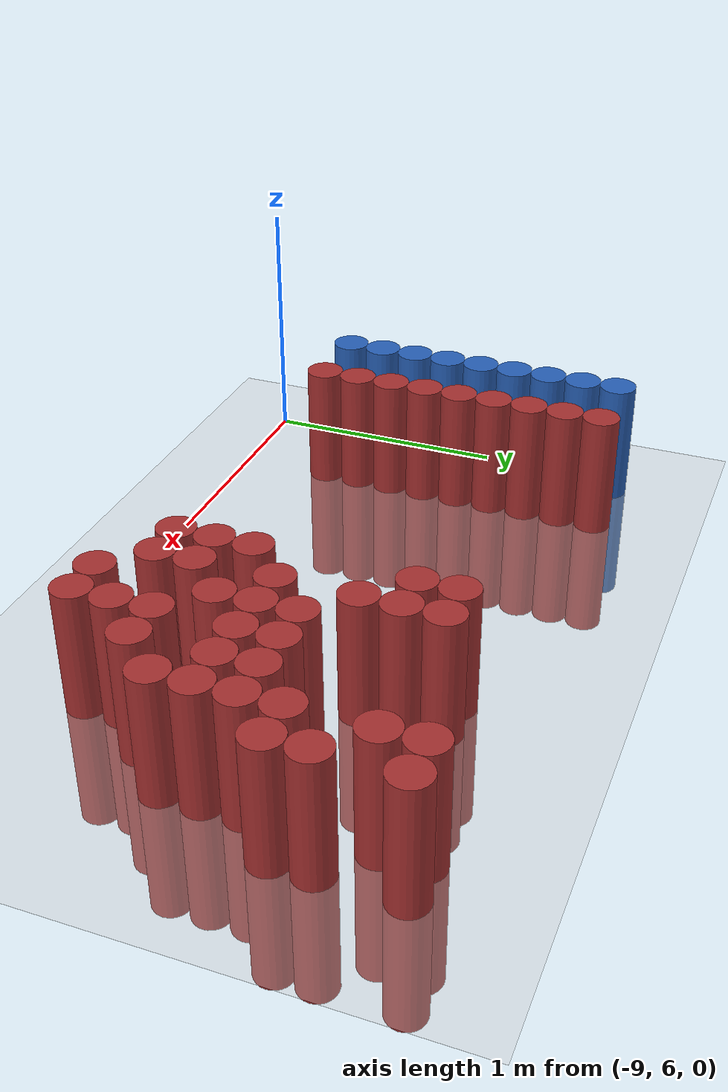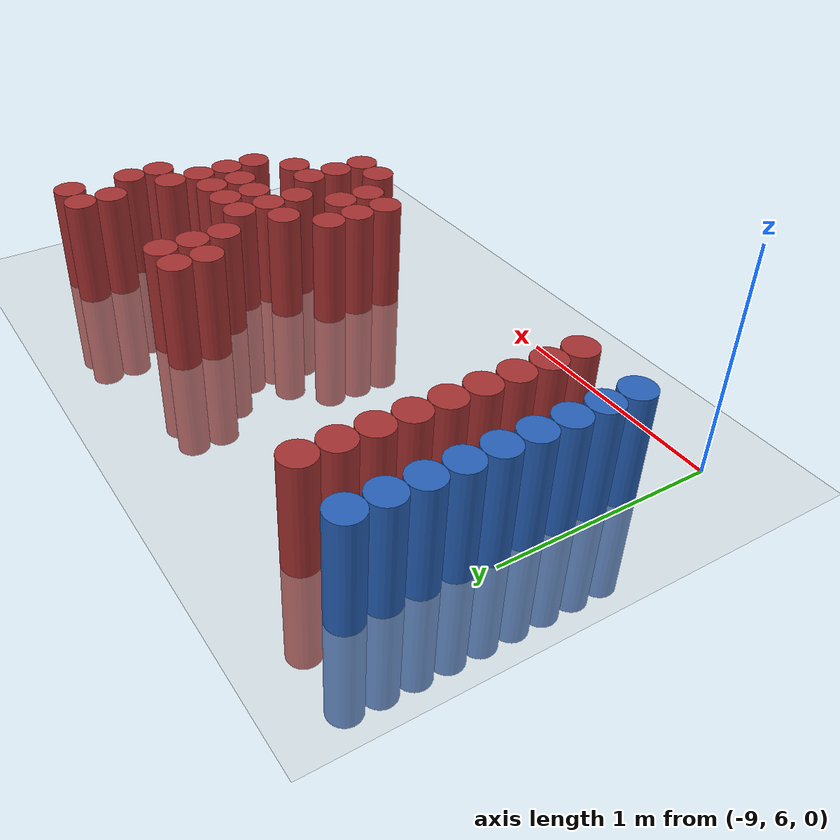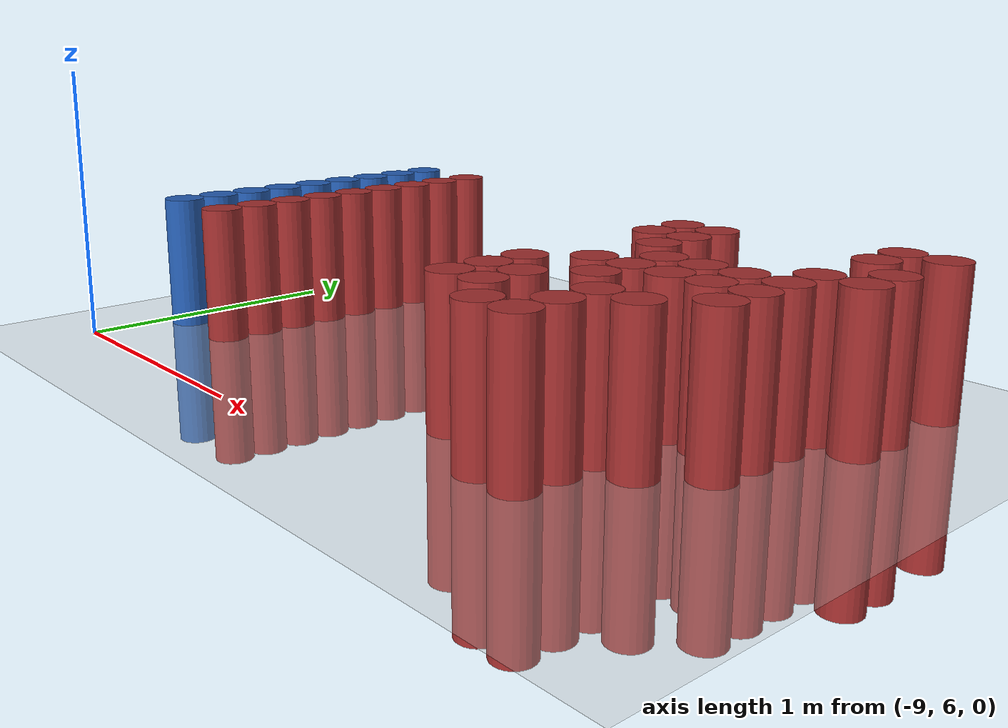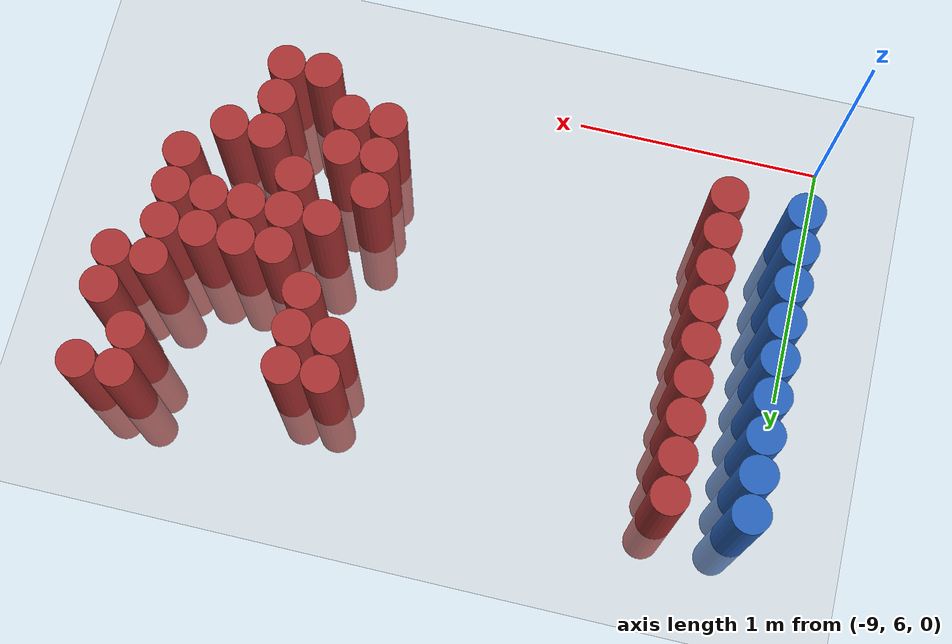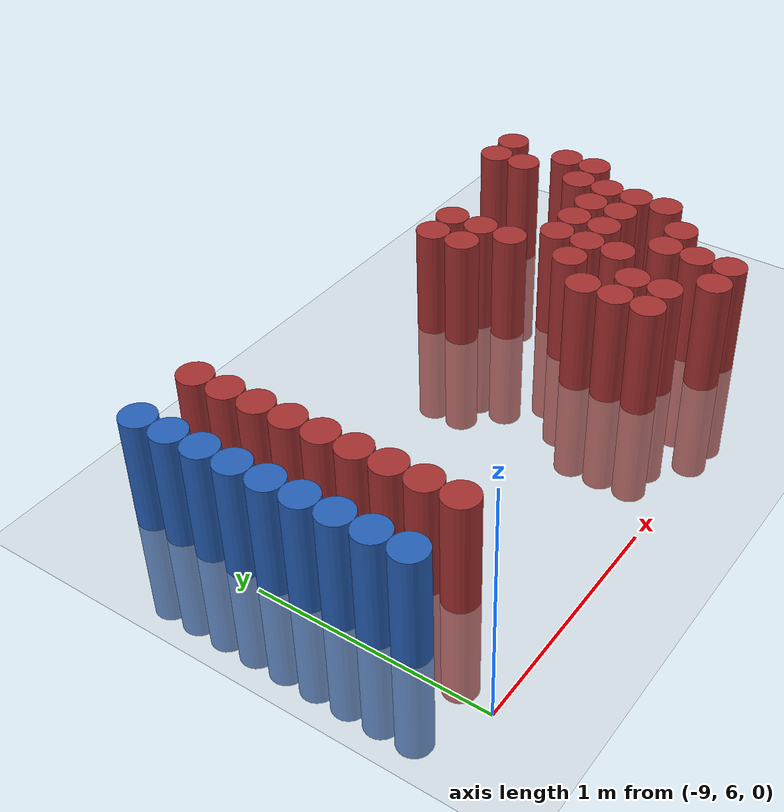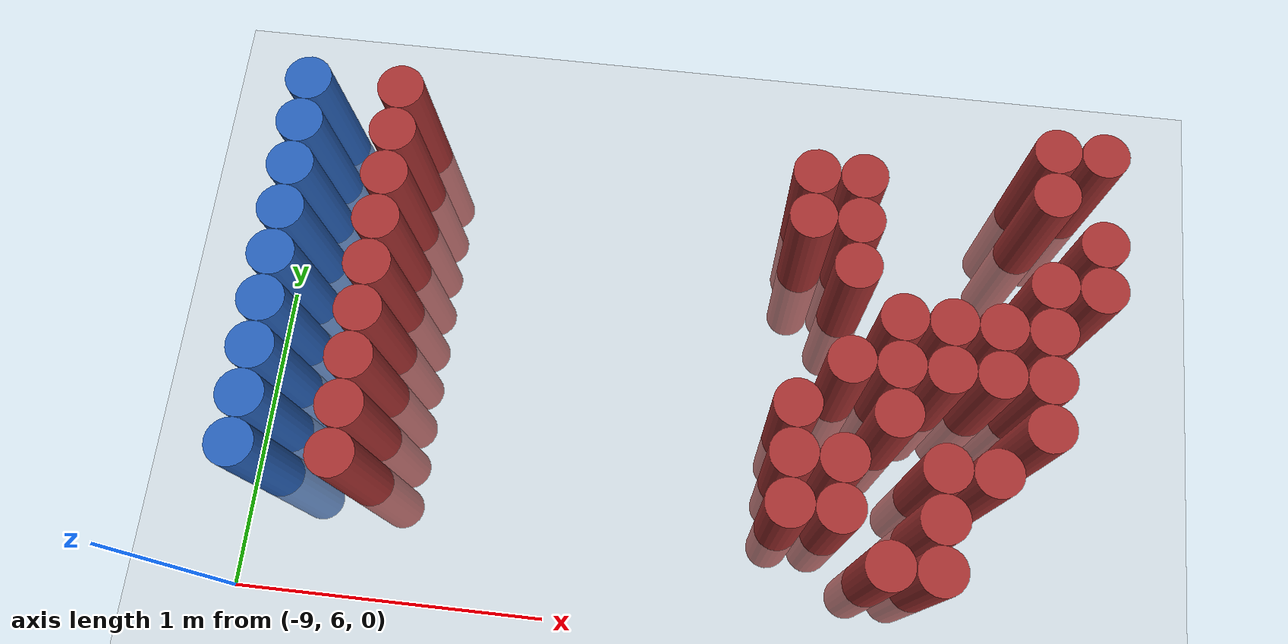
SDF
<sdf version="1.6">
 <world name="default">
  <model name="ground_plane">
   <static>1</static>
   <link name="link">
    <collision name="collision">
     <geometry><plane><normal>0 0 1</normal><size>100 100</size></plane></geometry>
     <surface><friction><ode><mu>100</mu><mu2>50</mu2></ode></friction></surface>
    </collision>
    <visual name="visual">
     <cast_shadows>0</cast_shadows>
     <geometry><plane><normal>0 0 1</normal><size>100 100</size></plane></geometry>
     <material>
      <script><uri>file://media/materials/scripts/gazebo.material</uri><name>Gazebo/Grey</name></script>
     </material>
    </visual>
   </link>
  </model>
  <model name="unit_cylinder_133">
   <static>1</static>
   <pose>-8.925000 6.375000 0.000000 0.000000 0.000000 0.000000</pose>
   <link name="link">
    <inertial>
     <mass>1</mass>
     <inertia><ixx>0.145833</ixx><ixy>0</ixy><ixz>0</ixz><iyy>0.145833</iyy><iyz>0</iyz><izz>0.125</izz></inertia>
    </inertial>
    <collision name="collision">
     <geometry><cylinder><radius>0.075000</radius><length>1</length></cylinder></geometry>
    </collision>
    <visual name="visual">
     <geometry><cylinder><radius>0.075000</radius><length>1</length></cylinder></geometry>
     <material>
      <ambient>0.152000 0.379000 0.720000 1</ambient>
      <diffuse>0.152000 0.379000 0.720000 1</diffuse>
     </material>
     <material>
      <script><name>Gazebo/Grey</name><uri>file://media/materials/scripts/gazebo.material</uri></script>
     </material>
    </visual>
   </link>
  </model>
  <model name="unit_cylinder_134">
   <static>1</static>
   <pose>-8.925000 6.525000 0.000000 0.000000 0.000000 0.000000</pose>
   <link name="link">
    <inertial>
     <mass>1</mass>
     <inertia><ixx>0.145833</ixx><ixy>0</ixy><ixz>0</ixz><iyy>0.145833</iyy><iyz>0</iyz><izz>0.125</izz></inertia>
    </inertial>
    <collision name="collision">
     <geometry><cylinder><radius>0.075000</radius><length>1</length></cylinder></geometry>
    </collision>
    <visual name="visual">
     <geometry><cylinder><radius>0.075000</radius><length>1</length></cylinder></geometry>
     <material>
      <ambient>0.152000 0.379000 0.720000 1</ambient>
      <diffuse>0.152000 0.379000 0.720000 1</diffuse>
     </material>
     <material>
      <script><name>Gazebo/Grey</name><uri>file://media/materials/scripts/gazebo.material</uri></script>
     </material>
    </visual>
   </link>
  </model>
  <model name="unit_cylinder_135">
   <static>1</static>
   <pose>-8.925000 6.675000 0.000000 0.000000 0.000000 0.000000</pose>
   <link name="link">
    <inertial>
     <mass>1</mass>
     <inertia><ixx>0.145833</ixx><ixy>0</ixy><ixz>0</ixz><iyy>0.145833</iyy><iyz>0</iyz><izz>0.125</izz></inertia>
    </inertial>
    <collision name="collision">
     <geometry><cylinder><radius>0.075000</radius><length>1</length></cylinder></geometry>
    </collision>
    <visual name="visual">
     <geometry><cylinder><radius>0.075000</radius><length>1</length></cylinder></geometry>
     <material>
      <ambient>0.152000 0.379000 0.720000 1</ambient>
      <diffuse>0.152000 0.379000 0.720000 1</diffuse>
     </material>
     <material>
      <script><name>Gazebo/Grey</name><uri>file://media/materials/scripts/gazebo.material</uri></script>
     </material>
    </visual>
   </link>
  </model>
  <model name="unit_cylinder_136">
   <static>1</static>
   <pose>-8.925000 6.825000 0.000000 0.000000 0.000000 0.000000</pose>
   <link name="link">
    <inertial>
     <mass>1</mass>
     <inertia><ixx>0.145833</ixx><ixy>0</ixy><ixz>0</ixz><iyy>0.145833</iyy><iyz>0</iyz><izz>0.125</izz></inertia>
    </inertial>
    <collision name="collision">
     <geometry><cylinder><radius>0.075000</radius><length>1</length></cylinder></geometry>
    </collision>
    <visual name="visual">
     <geometry><cylinder><radius>0.075000</radius><length>1</length></cylinder></geometry>
     <material>
      <ambient>0.152000 0.379000 0.720000 1</ambient>
      <diffuse>0.152000 0.379000 0.720000 1</diffuse>
     </material>
     <material>
      <script><name>Gazebo/Grey</name><uri>file://media/materials/scripts/gazebo.material</uri></script>
     </material>
    </visual>
   </link>
  </model>
  <model name="unit_cylinder_137">
   <static>1</static>
   <pose>-8.925000 6.975000 0.000000 0.000000 0.000000 0.000000</pose>
   <link name="link">
    <inertial>
     <mass>1</mass>
     <inertia><ixx>0.145833</ixx><ixy>0</ixy><ixz>0</ixz><iyy>0.145833</iyy><iyz>0</iyz><izz>0.125</izz></inertia>
    </inertial>
    <collision name="collision">
     <geometry><cylinder><radius>0.075000</radius><length>1</length></cylinder></geometry>
    </collision>
    <visual name="visual">
     <geometry><cylinder><radius>0.075000</radius><length>1</length></cylinder></geometry>
     <material>
      <ambient>0.152000 0.379000 0.720000 1</ambient>
      <diffuse>0.152000 0.379000 0.720000 1</diffuse>
     </material>
     <material>
      <script><name>Gazebo/Grey</name><uri>file://media/materials/scripts/gazebo.material</uri></script>
     </material>
    </visual>
   </link>
  </model>
  <model name="unit_cylinder_138">
   <static>1</static>
   <pose>-8.925000 7.125000 0.000000 0.000000 0.000000 0.000000</pose>
   <link name="link">
    <inertial>
     <mass>1</mass>
     <inertia><ixx>0.145833</ixx><ixy>0</ixy><ixz>0</ixz><iyy>0.145833</iyy><iyz>0</iyz><izz>0.125</izz></inertia>
    </inertial>
    <collision name="collision">
     <geometry><cylinder><radius>0.075000</radius><length>1</length></cylinder></geometry>
    </collision>
    <visual name="visual">
     <geometry><cylinder><radius>0.075000</radius><length>1</length></cylinder></geometry>
     <material>
      <ambient>0.152000 0.379000 0.720000 1</ambient>
      <diffuse>0.152000 0.379000 0.720000 1</diffuse>
     </material>
     <material>
      <script><name>Gazebo/Grey</name><uri>file://media/materials/scripts/gazebo.material</uri></script>
     </material>
    </visual>
   </link>
  </model>
  <model name="unit_cylinder_139">
   <static>1</static>
   <pose>-8.925000 7.275000 0.000000 0.000000 0.000000 0.000000</pose>
   <link name="link">
    <inertial>
     <mass>1</mass>
     <inertia><ixx>0.145833</ixx><ixy>0</ixy><ixz>0</ixz><iyy>0.145833</iyy><iyz>0</iyz><izz>0.125</izz></inertia>
    </inertial>
    <collision name="collision">
     <geometry><cylinder><radius>0.075000</radius><length>1</length></cylinder></geometry>
    </collision>
    <visual name="visual">
     <geometry><cylinder><radius>0.075000</radius><length>1</length></cylinder></geometry>
     <material>
      <ambient>0.152000 0.379000 0.720000 1</ambient>
      <diffuse>0.152000 0.379000 0.720000 1</diffuse>
     </material>
     <material>
      <script><name>Gazebo/Grey</name><uri>file://media/materials/scripts/gazebo.material</uri></script>
     </material>
    </visual>
   </link>
  </model>
  <model name="unit_cylinder_140">
   <static>1</static>
   <pose>-8.925000 7.425000 0.000000 0.000000 0.000000 0.000000</pose>
   <link name="link">
    <inertial>
     <mass>1</mass>
     <inertia><ixx>0.145833</ixx><ixy>0</ixy><ixz>0</ixz><iyy>0.145833</iyy><iyz>0</iyz><izz>0.125</izz></inertia>
    </inertial>
    <collision name="collision">
     <geometry><cylinder><radius>0.075000</radius><length>1</length></cylinder></geometry>
    </collision>
    <visual name="visual">
     <geometry><cylinder><radius>0.075000</radius><length>1</length></cylinder></geometry>
     <material>
      <ambient>0.152000 0.379000 0.720000 1</ambient>
      <diffuse>0.152000 0.379000 0.720000 1</diffuse>
     </material>
     <material>
      <script><name>Gazebo/Grey</name><uri>file://media/materials/scripts/gazebo.material</uri></script>
     </material>
    </visual>
   </link>
  </model>
  <model name="unit_cylinder_141">
   <static>1</static>
   <pose>-8.925000 7.575000 0.000000 0.000000 0.000000 0.000000</pose>
   <link name="link">
    <inertial>
     <mass>1</mass>
     <inertia><ixx>0.145833</ixx><ixy>0</ixy><ixz>0</ixz><iyy>0.145833</iyy><iyz>0</iyz><izz>0.125</izz></inertia>
    </inertial>
    <collision name="collision">
     <geometry><cylinder><radius>0.075000</radius><length>1</length></cylinder></geometry>
    </collision>
    <visual name="visual">
     <geometry><cylinder><radius>0.075000</radius><length>1</length></cylinder></geometry>
     <material>
      <ambient>0.152000 0.379000 0.720000 1</ambient>
      <diffuse>0.152000 0.379000 0.720000 1</diffuse>
     </material>
     <material>
      <script><name>Gazebo/Grey</name><uri>file://media/materials/scripts/gazebo.material</uri></script>
     </material>
    </visual>
   </link>
  </model>
  <model name="unit_cylinder_165">
   <static>1</static>
   <pose>-8.625000 6.375000 0.000000 0.000000 0.000000 0.000000</pose>
   <link name="link">
    <inertial>
     <mass>1</mass>
     <inertia><ixx>0.145833</ixx><ixy>0</ixy><ixz>0</ixz><iyy>0.145833</iyy><iyz>0</iyz><izz>0.125</izz></inertia>
    </inertial>
    <collision name="collision">
     <geometry><cylinder><radius>0.075000</radius><length>1</length></cylinder></geometry>
    </collision>
    <visual name="visual">
     <geometry><cylinder><radius>0.075000</radius><length>1</length></cylinder></geometry>
     <material>
      <ambient>0.648000 0.192000 0.192000 1</ambient>
      <diffuse>0.648000 0.192000 0.192000 1</diffuse>
     </material>
     <material>
      <script><name>Gazebo/Grey</name><uri>file://media/materials/scripts/gazebo.material</uri></script>
     </material>
    </visual>
   </link>
  </model>
  <model name="unit_cylinder_166">
   <static>1</static>
   <pose>-8.625000 6.525000 0.000000 0.000000 0.000000 0.000000</pose>
   <link name="link">
    <inertial>
     <mass>1</mass>
     <inertia><ixx>0.145833</ixx><ixy>0</ixy><ixz>0</ixz><iyy>0.145833</iyy><iyz>0</iyz><izz>0.125</izz></inertia>
    </inertial>
    <collision name="collision">
     <geometry><cylinder><radius>0.075000</radius><length>1</length></cylinder></geometry>
    </collision>
    <visual name="visual">
     <geometry><cylinder><radius>0.075000</radius><length>1</length></cylinder></geometry>
     <material>
      <ambient>0.648000 0.192000 0.192000 1</ambient>
      <diffuse>0.648000 0.192000 0.192000 1</diffuse>
     </material>
     <material>
      <script><name>Gazebo/Grey</name><uri>file://media/materials/scripts/gazebo.material</uri></script>
     </material>
    </visual>
   </link>
  </model>
  <model name="unit_cylinder_167">
   <static>1</static>
   <pose>-8.625000 6.675000 0.000000 0.000000 0.000000 0.000000</pose>
   <link name="link">
    <inertial>
     <mass>1</mass>
     <inertia><ixx>0.145833</ixx><ixy>0</ixy><ixz>0</ixz><iyy>0.145833</iyy><iyz>0</iyz><izz>0.125</izz></inertia>
    </inertial>
    <collision name="collision">
     <geometry><cylinder><radius>0.075000</radius><length>1</length></cylinder></geometry>
    </collision>
    <visual name="visual">
     <geometry><cylinder><radius>0.075000</radius><length>1</length></cylinder></geometry>
     <material>
      <ambient>0.648000 0.192000 0.192000 1</ambient>
      <diffuse>0.648000 0.192000 0.192000 1</diffuse>
     </material>
     <material>
      <script><name>Gazebo/Grey</name><uri>file://media/materials/scripts/gazebo.material</uri></script>
     </material>
    </visual>
   </link>
  </model>
  <model name="unit_cylinder_168">
   <static>1</static>
   <pose>-8.625000 6.825000 0.000000 0.000000 0.000000 0.000000</pose>
   <link name="link">
    <inertial>
     <mass>1</mass>
     <inertia><ixx>0.145833</ixx><ixy>0</ixy><ixz>0</ixz><iyy>0.145833</iyy><iyz>0</iyz><izz>0.125</izz></inertia>
    </inertial>
    <collision name="collision">
     <geometry><cylinder><radius>0.075000</radius><length>1</length></cylinder></geometry>
    </collision>
    <visual name="visual">
     <geometry><cylinder><radius>0.075000</radius><length>1</length></cylinder></geometry>
     <material>
      <ambient>0.648000 0.192000 0.192000 1</ambient>
      <diffuse>0.648000 0.192000 0.192000 1</diffuse>
     </material>
     <material>
      <script><name>Gazebo/Grey</name><uri>file://media/materials/scripts/gazebo.material</uri></script>
     </material>
    </visual>
   </link>
  </model>
  <model name="unit_cylinder_169">
   <static>1</static>
   <pose>-8.625000 6.975000 0.000000 0.000000 0.000000 0.000000</pose>
   <link name="link">
    <inertial>
     <mass>1</mass>
     <inertia><ixx>0.145833</ixx><ixy>0</ixy><ixz>0</ixz><iyy>0.145833</iyy><iyz>0</iyz><izz>0.125</izz></inertia>
    </inertial>
    <collision name="collision">
     <geometry><cylinder><radius>0.075000</radius><length>1</length></cylinder></geometry>
    </collision>
    <visual name="visual">
     <geometry><cylinder><radius>0.075000</radius><length>1</length></cylinder></geometry>
     <material>
      <ambient>0.648000 0.192000 0.192000 1</ambient>
      <diffuse>0.648000 0.192000 0.192000 1</diffuse>
     </material>
     <material>
      <script><name>Gazebo/Grey</name><uri>file://media/materials/scripts/gazebo.material</uri></script>
     </material>
    </visual>
   </link>
  </model>
  <model name="unit_cylinder_170">
   <static>1</static>
   <pose>-8.625000 7.125000 0.000000 0.000000 0.000000 0.000000</pose>
   <link name="link">
    <inertial>
     <mass>1</mass>
     <inertia><ixx>0.145833</ixx><ixy>0</ixy><ixz>0</ixz><iyy>0.145833</iyy><iyz>0</iyz><izz>0.125</izz></inertia>
    </inertial>
    <collision name="collision">
     <geometry><cylinder><radius>0.075000</radius><length>1</length></cylinder></geometry>
    </collision>
    <visual name="visual">
     <geometry><cylinder><radius>0.075000</radius><length>1</length></cylinder></geometry>
     <material>
      <ambient>0.648000 0.192000 0.192000 1</ambient>
      <diffuse>0.648000 0.192000 0.192000 1</diffuse>
     </material>
     <material>
      <script><name>Gazebo/Grey</name><uri>file://media/materials/scripts/gazebo.material</uri></script>
     </material>
    </visual>
   </link>
  </model>
  <model name="unit_cylinder_171">
   <static>1</static>
   <pose>-8.625000 7.275000 0.000000 0.000000 0.000000 0.000000</pose>
   <link name="link">
    <inertial>
     <mass>1</mass>
     <inertia><ixx>0.145833</ixx><ixy>0</ixy><ixz>0</ixz><iyy>0.145833</iyy><iyz>0</iyz><izz>0.125</izz></inertia>
    </inertial>
    <collision name="collision">
     <geometry><cylinder><radius>0.075000</radius><length>1</length></cylinder></geometry>
    </collision>
    <visual name="visual">
     <geometry><cylinder><radius>0.075000</radius><length>1</length></cylinder></geometry>
     <material>
      <ambient>0.648000 0.192000 0.192000 1</ambient>
      <diffuse>0.648000 0.192000 0.192000 1</diffuse>
     </material>
     <material>
      <script><name>Gazebo/Grey</name><uri>file://media/materials/scripts/gazebo.material</uri></script>
     </material>
    </visual>
   </link>
  </model>
  <model name="unit_cylinder_172">
   <static>1</static>
   <pose>-8.625000 7.425000 0.000000 0.000000 0.000000 0.000000</pose>
   <link name="link">
    <inertial>
     <mass>1</mass>
     <inertia><ixx>0.145833</ixx><ixy>0</ixy><ixz>0</ixz><iyy>0.145833</iyy><iyz>0</iyz><izz>0.125</izz></inertia>
    </inertial>
    <collision name="collision">
     <geometry><cylinder><radius>0.075000</radius><length>1</length></cylinder></geometry>
    </collision>
    <visual name="visual">
     <geometry><cylinder><radius>0.075000</radius><length>1</length></cylinder></geometry>
     <material>
      <ambient>0.648000 0.192000 0.192000 1</ambient>
      <diffuse>0.648000 0.192000 0.192000 1</diffuse>
     </material>
     <material>
      <script><name>Gazebo/Grey</name><uri>file://media/materials/scripts/gazebo.material</uri></script>
     </material>
    </visual>
   </link>
  </model>
  <model name="unit_cylinder_173">
   <static>1</static>
   <pose>-8.625000 7.575000 0.000000 0.000000 0.000000 0.000000</pose>
   <link name="link">
    <inertial>
     <mass>1</mass>
     <inertia><ixx>0.145833</ixx><ixy>0</ixy><ixz>0</ixz><iyy>0.145833</iyy><iyz>0</iyz><izz>0.125</izz></inertia>
    </inertial>
    <collision name="collision">
     <geometry><cylinder><radius>0.075000</radius><length>1</length></cylinder></geometry>
    </collision>
    <visual name="visual">
     <geometry><cylinder><radius>0.075000</radius><length>1</length></cylinder></geometry>
     <material>
      <ambient>0.648000 0.192000 0.192000 1</ambient>
      <diffuse>0.648000 0.192000 0.192000 1</diffuse>
     </material>
     <material>
      <script><name>Gazebo/Grey</name><uri>file://media/materials/scripts/gazebo.material</uri></script>
     </material>
    </visual>
   </link>
  </model>
  <model name="unit_cylinder_192">
   <static>1</static>
   <pose>-7.275000 6.375000 0.000000 0.000000 0.000000 0.000000</pose>
   <link name="link">
    <inertial>
     <mass>1</mass>
     <inertia><ixx>0.145833</ixx><ixy>0</ixy><ixz>0</ixz><iyy>0.145833</iyy><iyz>0</iyz><izz>0.125</izz></inertia>
    </inertial>
    <collision name="collision">
     <geometry><cylinder><radius>0.075000</radius><length>1</length></cylinder></geometry>
    </collision>
    <visual name="visual">
     <geometry><cylinder><radius>0.075000</radius><length>1</length></cylinder></geometry>
     <material>
      <ambient>0.648000 0.192000 0.192000 1</ambient>
      <diffuse>0.648000 0.192000 0.192000 1</diffuse>
     </material>
     <material>
      <script><name>Gazebo/Grey</name><uri>file://media/materials/scripts/gazebo.material</uri></script>
     </material>
    </visual>
   </link>
  </model>
  <model name="unit_cylinder_193">
   <static>1</static>
   <pose>-7.275000 6.525000 0.000000 0.000000 0.000000 0.000000</pose>
   <link name="link">
    <inertial>
     <mass>1</mass>
     <inertia><ixx>0.145833</ixx><ixy>0</ixy><ixz>0</ixz><iyy>0.145833</iyy><iyz>0</iyz><izz>0.125</izz></inertia>
    </inertial>
    <collision name="collision">
     <geometry><cylinder><radius>0.075000</radius><length>1</length></cylinder></geometry>
    </collision>
    <visual name="visual">
     <geometry><cylinder><radius>0.075000</radius><length>1</length></cylinder></geometry>
     <material>
      <ambient>0.648000 0.192000 0.192000 1</ambient>
      <diffuse>0.648000 0.192000 0.192000 1</diffuse>
     </material>
     <material>
      <script><name>Gazebo/Grey</name><uri>file://media/materials/scripts/gazebo.material</uri></script>
     </material>
    </visual>
   </link>
  </model>
  <model name="unit_cylinder_194">
   <static>1</static>
   <pose>-7.275000 6.675000 0.000000 0.000000 0.000000 0.000000</pose>
   <link name="link">
    <inertial>
     <mass>1</mass>
     <inertia><ixx>0.145833</ixx><ixy>0</ixy><ixz>0</ixz><iyy>0.145833</iyy><iyz>0</iyz><izz>0.125</izz></inertia>
    </inertial>
    <collision name="collision">
     <geometry><cylinder><radius>0.075000</radius><length>1</length></cylinder></geometry>
    </collision>
    <visual name="visual">
     <geometry><cylinder><radius>0.075000</radius><length>1</length></cylinder></geometry>
     <material>
      <ambient>0.648000 0.192000 0.192000 1</ambient>
      <diffuse>0.648000 0.192000 0.192000 1</diffuse>
     </material>
     <material>
      <script><name>Gazebo/Grey</name><uri>file://media/materials/scripts/gazebo.material</uri></script>
     </material>
    </visual>
   </link>
  </model>
  <model name="unit_cylinder_195">
   <static>1</static>
   <pose>-7.275000 7.275000 0.000000 0.000000 0.000000 0.000000</pose>
   <link name="link">
    <inertial>
     <mass>1</mass>
     <inertia><ixx>0.145833</ixx><ixy>0</ixy><ixz>0</ixz><iyy>0.145833</iyy><iyz>0</iyz><izz>0.125</izz></inertia>
    </inertial>
    <collision name="collision">
     <geometry><cylinder><radius>0.075000</radius><length>1</length></cylinder></geometry>
    </collision>
    <visual name="visual">
     <geometry><cylinder><radius>0.075000</radius><length>1</length></cylinder></geometry>
     <material>
      <ambient>0.648000 0.192000 0.192000 1</ambient>
      <diffuse>0.648000 0.192000 0.192000 1</diffuse>
     </material>
     <material>
      <script><name>Gazebo/Grey</name><uri>file://media/materials/scripts/gazebo.material</uri></script>
     </material>
    </visual>
   </link>
  </model>
  <model name="unit_cylinder_196">
   <static>1</static>
   <pose>-7.275000 7.425000 0.000000 0.000000 0.000000 0.000000</pose>
   <link name="link">
    <inertial>
     <mass>1</mass>
     <inertia><ixx>0.145833</ixx><ixy>0</ixy><ixz>0</ixz><iyy>0.145833</iyy><iyz>0</iyz><izz>0.125</izz></inertia>
    </inertial>
    <collision name="collision">
     <geometry><cylinder><radius>0.075000</radius><length>1</length></cylinder></geometry>
    </collision>
    <visual name="visual">
     <geometry><cylinder><radius>0.075000</radius><length>1</length></cylinder></geometry>
     <material>
      <ambient>0.648000 0.192000 0.192000 1</ambient>
      <diffuse>0.648000 0.192000 0.192000 1</diffuse>
     </material>
     <material>
      <script><name>Gazebo/Grey</name><uri>file://media/materials/scripts/gazebo.material</uri></script>
     </material>
    </visual>
   </link>
  </model>
  <model name="unit_cylinder_200">
   <static>1</static>
   <pose>-7.125000 6.375000 0.000000 0.000000 0.000000 0.000000</pose>
   <link name="link">
    <inertial>
     <mass>1</mass>
     <inertia><ixx>0.145833</ixx><ixy>0</ixy><ixz>0</ixz><iyy>0.145833</iyy><iyz>0</iyz><izz>0.125</izz></inertia>
    </inertial>
    <collision name="collision">
     <geometry><cylinder><radius>0.075000</radius><length>1</length></cylinder></geometry>
    </collision>
    <visual name="visual">
     <geometry><cylinder><radius>0.075000</radius><length>1</length></cylinder></geometry>
     <material>
      <ambient>0.648000 0.192000 0.192000 1</ambient>
      <diffuse>0.648000 0.192000 0.192000 1</diffuse>
     </material>
     <material>
      <script><name>Gazebo/Grey</name><uri>file://media/materials/scripts/gazebo.material</uri></script>
     </material>
    </visual>
   </link>
  </model>
  <model name="unit_cylinder_201">
   <static>1</static>
   <pose>-7.125000 6.525000 0.000000 0.000000 0.000000 0.000000</pose>
   <link name="link">
    <inertial>
     <mass>1</mass>
     <inertia><ixx>0.145833</ixx><ixy>0</ixy><ixz>0</ixz><iyy>0.145833</iyy><iyz>0</iyz><izz>0.125</izz></inertia>
    </inertial>
    <collision name="collision">
     <geometry><cylinder><radius>0.075000</radius><length>1</length></cylinder></geometry>
    </collision>
    <visual name="visual">
     <geometry><cylinder><radius>0.075000</radius><length>1</length></cylinder></geometry>
     <material>
      <ambient>0.648000 0.192000 0.192000 1</ambient>
      <diffuse>0.648000 0.192000 0.192000 1</diffuse>
     </material>
     <material>
      <script><name>Gazebo/Grey</name><uri>file://media/materials/scripts/gazebo.material</uri></script>
     </material>
    </visual>
   </link>
  </model>
  <model name="unit_cylinder_202">
   <static>1</static>
   <pose>-7.125000 6.825000 0.000000 0.000000 0.000000 0.000000</pose>
   <link name="link">
    <inertial>
     <mass>1</mass>
     <inertia><ixx>0.145833</ixx><ixy>0</ixy><ixz>0</ixz><iyy>0.145833</iyy><iyz>0</iyz><izz>0.125</izz></inertia>
    </inertial>
    <collision name="collision">
     <geometry><cylinder><radius>0.075000</radius><length>1</length></cylinder></geometry>
    </collision>
    <visual name="visual">
     <geometry><cylinder><radius>0.075000</radius><length>1</length></cylinder></geometry>
     <material>
      <ambient>0.648000 0.192000 0.192000 1</ambient>
      <diffuse>0.648000 0.192000 0.192000 1</diffuse>
     </material>
     <material>
      <script><name>Gazebo/Grey</name><uri>file://media/materials/scripts/gazebo.material</uri></script>
     </material>
    </visual>
   </link>
  </model>
  <model name="unit_cylinder_203">
   <static>1</static>
   <pose>-7.125000 7.125000 0.000000 0.000000 0.000000 0.000000</pose>
   <link name="link">
    <inertial>
     <mass>1</mass>
     <inertia><ixx>0.145833</ixx><ixy>0</ixy><ixz>0</ixz><iyy>0.145833</iyy><iyz>0</iyz><izz>0.125</izz></inertia>
    </inertial>
    <collision name="collision">
     <geometry><cylinder><radius>0.075000</radius><length>1</length></cylinder></geometry>
    </collision>
    <visual name="visual">
     <geometry><cylinder><radius>0.075000</radius><length>1</length></cylinder></geometry>
     <material>
      <ambient>0.648000 0.192000 0.192000 1</ambient>
      <diffuse>0.648000 0.192000 0.192000 1</diffuse>
     </material>
     <material>
      <script><name>Gazebo/Grey</name><uri>file://media/materials/scripts/gazebo.material</uri></script>
     </material>
    </visual>
   </link>
  </model>
  <model name="unit_cylinder_204">
   <static>1</static>
   <pose>-7.125000 7.275000 0.000000 0.000000 0.000000 0.000000</pose>
   <link name="link">
    <inertial>
     <mass>1</mass>
     <inertia><ixx>0.145833</ixx><ixy>0</ixy><ixz>0</ixz><iyy>0.145833</iyy><iyz>0</iyz><izz>0.125</izz></inertia>
    </inertial>
    <collision name="collision">
     <geometry><cylinder><radius>0.075000</radius><length>1</length></cylinder></geometry>
    </collision>
    <visual name="visual">
     <geometry><cylinder><radius>0.075000</radius><length>1</length></cylinder></geometry>
     <material>
      <ambient>0.648000 0.192000 0.192000 1</ambient>
      <diffuse>0.648000 0.192000 0.192000 1</diffuse>
     </material>
     <material>
      <script><name>Gazebo/Grey</name><uri>file://media/materials/scripts/gazebo.material</uri></script>
     </material>
    </visual>
   </link>
  </model>
  <model name="unit_cylinder_205">
   <static>1</static>
   <pose>-7.125000 7.425000 0.000000 0.000000 0.000000 0.000000</pose>
   <link name="link">
    <inertial>
     <mass>1</mass>
     <inertia><ixx>0.145833</ixx><ixy>0</ixy><ixz>0</ixz><iyy>0.145833</iyy><iyz>0</iyz><izz>0.125</izz></inertia>
    </inertial>
    <collision name="collision">
     <geometry><cylinder><radius>0.075000</radius><length>1</length></cylinder></geometry>
    </collision>
    <visual name="visual">
     <geometry><cylinder><radius>0.075000</radius><length>1</length></cylinder></geometry>
     <material>
      <ambient>0.648000 0.192000 0.192000 1</ambient>
      <diffuse>0.648000 0.192000 0.192000 1</diffuse>
     </material>
     <material>
      <script><name>Gazebo/Grey</name><uri>file://media/materials/scripts/gazebo.material</uri></script>
     </material>
    </visual>
   </link>
  </model>
  <model name="unit_cylinder_209">
   <static>1</static>
   <pose>-6.975000 6.225000 0.000000 0.000000 0.000000 0.000000</pose>
   <link name="link">
    <inertial>
     <mass>1</mass>
     <inertia><ixx>0.145833</ixx><ixy>0</ixy><ixz>0</ixz><iyy>0.145833</iyy><iyz>0</iyz><izz>0.125</izz></inertia>
    </inertial>
    <collision name="collision">
     <geometry><cylinder><radius>0.075000</radius><length>1</length></cylinder></geometry>
    </collision>
    <visual name="visual">
     <geometry><cylinder><radius>0.075000</radius><length>1</length></cylinder></geometry>
     <material>
      <ambient>0.648000 0.192000 0.192000 1</ambient>
      <diffuse>0.648000 0.192000 0.192000 1</diffuse>
     </material>
     <material>
      <script><name>Gazebo/Grey</name><uri>file://media/materials/scripts/gazebo.material</uri></script>
     </material>
    </visual>
   </link>
  </model>
  <model name="unit_cylinder_210">
   <static>1</static>
   <pose>-6.975000 6.675000 0.000000 0.000000 0.000000 0.000000</pose>
   <link name="link">
    <inertial>
     <mass>1</mass>
     <inertia><ixx>0.145833</ixx><ixy>0</ixy><ixz>0</ixz><iyy>0.145833</iyy><iyz>0</iyz><izz>0.125</izz></inertia>
    </inertial>
    <collision name="collision">
     <geometry><cylinder><radius>0.075000</radius><length>1</length></cylinder></geometry>
    </collision>
    <visual name="visual">
     <geometry><cylinder><radius>0.075000</radius><length>1</length></cylinder></geometry>
     <material>
      <ambient>0.648000 0.192000 0.192000 1</ambient>
      <diffuse>0.648000 0.192000 0.192000 1</diffuse>
     </material>
     <material>
      <script><name>Gazebo/Grey</name><uri>file://media/materials/scripts/gazebo.material</uri></script>
     </material>
    </visual>
   </link>
  </model>
  <model name="unit_cylinder_211">
   <static>1</static>
   <pose>-6.975000 6.825000 0.000000 0.000000 0.000000 0.000000</pose>
   <link name="link">
    <inertial>
     <mass>1</mass>
     <inertia><ixx>0.145833</ixx><ixy>0</ixy><ixz>0</ixz><iyy>0.145833</iyy><iyz>0</iyz><izz>0.125</izz></inertia>
    </inertial>
    <collision name="collision">
     <geometry><cylinder><radius>0.075000</radius><length>1</length></cylinder></geometry>
    </collision>
    <visual name="visual">
     <geometry><cylinder><radius>0.075000</radius><length>1</length></cylinder></geometry>
     <material>
      <ambient>0.648000 0.192000 0.192000 1</ambient>
      <diffuse>0.648000 0.192000 0.192000 1</diffuse>
     </material>
     <material>
      <script><name>Gazebo/Grey</name><uri>file://media/materials/scripts/gazebo.material</uri></script>
     </material>
    </visual>
   </link>
  </model>
  <model name="unit_cylinder_212">
   <static>1</static>
   <pose>-6.975000 6.975000 0.000000 0.000000 0.000000 0.000000</pose>
   <link name="link">
    <inertial>
     <mass>1</mass>
     <inertia><ixx>0.145833</ixx><ixy>0</ixy><ixz>0</ixz><iyy>0.145833</iyy><iyz>0</iyz><izz>0.125</izz></inertia>
    </inertial>
    <collision name="collision">
     <geometry><cylinder><radius>0.075000</radius><length>1</length></cylinder></geometry>
    </collision>
    <visual name="visual">
     <geometry><cylinder><radius>0.075000</radius><length>1</length></cylinder></geometry>
     <material>
      <ambient>0.648000 0.192000 0.192000 1</ambient>
      <diffuse>0.648000 0.192000 0.192000 1</diffuse>
     </material>
     <material>
      <script><name>Gazebo/Grey</name><uri>file://media/materials/scripts/gazebo.material</uri></script>
     </material>
    </visual>
   </link>
  </model>
  <model name="unit_cylinder_220">
   <static>1</static>
   <pose>-6.825000 6.225000 0.000000 0.000000 0.000000 0.000000</pose>
   <link name="link">
    <inertial>
     <mass>1</mass>
     <inertia><ixx>0.145833</ixx><ixy>0</ixy><ixz>0</ixz><iyy>0.145833</iyy><iyz>0</iyz><izz>0.125</izz></inertia>
    </inertial>
    <collision name="collision">
     <geometry><cylinder><radius>0.075000</radius><length>1</length></cylinder></geometry>
    </collision>
    <visual name="visual">
     <geometry><cylinder><radius>0.075000</radius><length>1</length></cylinder></geometry>
     <material>
      <ambient>0.648000 0.192000 0.192000 1</ambient>
      <diffuse>0.648000 0.192000 0.192000 1</diffuse>
     </material>
     <material>
      <script><name>Gazebo/Grey</name><uri>file://media/materials/scripts/gazebo.material</uri></script>
     </material>
    </visual>
   </link>
  </model>
  <model name="unit_cylinder_221">
   <static>1</static>
   <pose>-6.825000 6.375000 0.000000 0.000000 0.000000 0.000000</pose>
   <link name="link">
    <inertial>
     <mass>1</mass>
     <inertia><ixx>0.145833</ixx><ixy>0</ixy><ixz>0</ixz><iyy>0.145833</iyy><iyz>0</iyz><izz>0.125</izz></inertia>
    </inertial>
    <collision name="collision">
     <geometry><cylinder><radius>0.075000</radius><length>1</length></cylinder></geometry>
    </collision>
    <visual name="visual">
     <geometry><cylinder><radius>0.075000</radius><length>1</length></cylinder></geometry>
     <material>
      <ambient>0.648000 0.192000 0.192000 1</ambient>
      <diffuse>0.648000 0.192000 0.192000 1</diffuse>
     </material>
     <material>
      <script><name>Gazebo/Grey</name><uri>file://media/materials/scripts/gazebo.material</uri></script>
     </material>
    </visual>
   </link>
  </model>
  <model name="unit_cylinder_222">
   <static>1</static>
   <pose>-6.825000 6.525000 0.000000 0.000000 0.000000 0.000000</pose>
   <link name="link">
    <inertial>
     <mass>1</mass>
     <inertia><ixx>0.145833</ixx><ixy>0</ixy><ixz>0</ixz><iyy>0.145833</iyy><iyz>0</iyz><izz>0.125</izz></inertia>
    </inertial>
    <collision name="collision">
     <geometry><cylinder><radius>0.075000</radius><length>1</length></cylinder></geometry>
    </collision>
    <visual name="visual">
     <geometry><cylinder><radius>0.075000</radius><length>1</length></cylinder></geometry>
     <material>
      <ambient>0.648000 0.192000 0.192000 1</ambient>
      <diffuse>0.648000 0.192000 0.192000 1</diffuse>
     </material>
     <material>
      <script><name>Gazebo/Grey</name><uri>file://media/materials/scripts/gazebo.material</uri></script>
     </material>
    </visual>
   </link>
  </model>
  <model name="unit_cylinder_223">
   <static>1</static>
   <pose>-6.825000 6.825000 0.000000 0.000000 0.000000 0.000000</pose>
   <link name="link">
    <inertial>
     <mass>1</mass>
     <inertia><ixx>0.145833</ixx><ixy>0</ixy><ixz>0</ixz><iyy>0.145833</iyy><iyz>0</iyz><izz>0.125</izz></inertia>
    </inertial>
    <collision name="collision">
     <geometry><cylinder><radius>0.075000</radius><length>1</length></cylinder></geometry>
    </collision>
    <visual name="visual">
     <geometry><cylinder><radius>0.075000</radius><length>1</length></cylinder></geometry>
     <material>
      <ambient>0.648000 0.192000 0.192000 1</ambient>
      <diffuse>0.648000 0.192000 0.192000 1</diffuse>
     </material>
     <material>
      <script><name>Gazebo/Grey</name><uri>file://media/materials/scripts/gazebo.material</uri></script>
     </material>
    </visual>
   </link>
  </model>
  <model name="unit_cylinder_224">
   <static>1</static>
   <pose>-6.825000 6.975000 0.000000 0.000000 0.000000 0.000000</pose>
   <link name="link">
    <inertial>
     <mass>1</mass>
     <inertia><ixx>0.145833</ixx><ixy>0</ixy><ixz>0</ixz><iyy>0.145833</iyy><iyz>0</iyz><izz>0.125</izz></inertia>
    </inertial>
    <collision name="collision">
     <geometry><cylinder><radius>0.075000</radius><length>1</length></cylinder></geometry>
    </collision>
    <visual name="visual">
     <geometry><cylinder><radius>0.075000</radius><length>1</length></cylinder></geometry>
     <material>
      <ambient>0.648000 0.192000 0.192000 1</ambient>
      <diffuse>0.648000 0.192000 0.192000 1</diffuse>
     </material>
     <material>
      <script><name>Gazebo/Grey</name><uri>file://media/materials/scripts/gazebo.material</uri></script>
     </material>
    </visual>
   </link>
  </model>
  <model name="unit_cylinder_233">
   <static>1</static>
   <pose>-6.675000 6.525000 0.000000 0.000000 0.000000 0.000000</pose>
   <link name="link">
    <inertial>
     <mass>1</mass>
     <inertia><ixx>0.145833</ixx><ixy>0</ixy><ixz>0</ixz><iyy>0.145833</iyy><iyz>0</iyz><izz>0.125</izz></inertia>
    </inertial>
    <collision name="collision">
     <geometry><cylinder><radius>0.075000</radius><length>1</length></cylinder></geometry>
    </collision>
    <visual name="visual">
     <geometry><cylinder><radius>0.075000</radius><length>1</length></cylinder></geometry>
     <material>
      <ambient>0.648000 0.192000 0.192000 1</ambient>
      <diffuse>0.648000 0.192000 0.192000 1</diffuse>
     </material>
     <material>
      <script><name>Gazebo/Grey</name><uri>file://media/materials/scripts/gazebo.material</uri></script>
     </material>
    </visual>
   </link>
  </model>
  <model name="unit_cylinder_234">
   <static>1</static>
   <pose>-6.675000 6.825000 0.000000 0.000000 0.000000 0.000000</pose>
   <link name="link">
    <inertial>
     <mass>1</mass>
     <inertia><ixx>0.145833</ixx><ixy>0</ixy><ixz>0</ixz><iyy>0.145833</iyy><iyz>0</iyz><izz>0.125</izz></inertia>
    </inertial>
    <collision name="collision">
     <geometry><cylinder><radius>0.075000</radius><length>1</length></cylinder></geometry>
    </collision>
    <visual name="visual">
     <geometry><cylinder><radius>0.075000</radius><length>1</length></cylinder></geometry>
     <material>
      <ambient>0.648000 0.192000 0.192000 1</ambient>
      <diffuse>0.648000 0.192000 0.192000 1</diffuse>
     </material>
     <material>
      <script><name>Gazebo/Grey</name><uri>file://media/materials/scripts/gazebo.material</uri></script>
     </material>
    </visual>
   </link>
  </model>
  <model name="unit_cylinder_235">
   <static>1</static>
   <pose>-6.675000 6.975000 0.000000 0.000000 0.000000 0.000000</pose>
   <link name="link">
    <inertial>
     <mass>1</mass>
     <inertia><ixx>0.145833</ixx><ixy>0</ixy><ixz>0</ixz><iyy>0.145833</iyy><iyz>0</iyz><izz>0.125</izz></inertia>
    </inertial>
    <collision name="collision">
     <geometry><cylinder><radius>0.075000</radius><length>1</length></cylinder></geometry>
    </collision>
    <visual name="visual">
     <geometry><cylinder><radius>0.075000</radius><length>1</length></cylinder></geometry>
     <material>
      <ambient>0.648000 0.192000 0.192000 1</ambient>
      <diffuse>0.648000 0.192000 0.192000 1</diffuse>
     </material>
     <material>
      <script><name>Gazebo/Grey</name><uri>file://media/materials/scripts/gazebo.material</uri></script>
     </material>
    </visual>
   </link>
  </model>
  <model name="unit_cylinder_239">
   <static>1</static>
   <pose>-6.525000 6.675000 0.000000 0.000000 0.000000 0.000000</pose>
   <link name="link">
    <inertial>
     <mass>1</mass>
     <inertia><ixx>0.145833</ixx><ixy>0</ixy><ixz>0</ixz><iyy>0.145833</iyy><iyz>0</iyz><izz>0.125</izz></inertia>
    </inertial>
    <collision name="collision">
     <geometry><cylinder><radius>0.075000</radius><length>1</length></cylinder></geometry>
    </collision>
    <visual name="visual">
     <geometry><cylinder><radius>0.075000</radius><length>1</length></cylinder></geometry>
     <material>
      <ambient>0.648000 0.192000 0.192000 1</ambient>
      <diffuse>0.648000 0.192000 0.192000 1</diffuse>
     </material>
     <material>
      <script><name>Gazebo/Grey</name><uri>file://media/materials/scripts/gazebo.material</uri></script>
     </material>
    </visual>
   </link>
  </model>
  <model name="unit_cylinder_240">
   <static>1</static>
   <pose>-6.525000 6.825000 0.000000 0.000000 0.000000 0.000000</pose>
   <link name="link">
    <inertial>
     <mass>1</mass>
     <inertia><ixx>0.145833</ixx><ixy>0</ixy><ixz>0</ixz><iyy>0.145833</iyy><iyz>0</iyz><izz>0.125</izz></inertia>
    </inertial>
    <collision name="collision">
     <geometry><cylinder><radius>0.075000</radius><length>1</length></cylinder></geometry>
    </collision>
    <visual name="visual">
     <geometry><cylinder><radius>0.075000</radius><length>1</length></cylinder></geometry>
     <material>
      <ambient>0.648000 0.192000 0.192000 1</ambient>
      <diffuse>0.648000 0.192000 0.192000 1</diffuse>
     </material>
     <material>
      <script><name>Gazebo/Grey</name><uri>file://media/materials/scripts/gazebo.material</uri></script>
     </material>
    </visual>
   </link>
  </model>
  <model name="unit_cylinder_241">
   <static>1</static>
   <pose>-6.525000 6.975000 0.000000 0.000000 0.000000 0.000000</pose>
   <link name="link">
    <inertial>
     <mass>1</mass>
     <inertia><ixx>0.145833</ixx><ixy>0</ixy><ixz>0</ixz><iyy>0.145833</iyy><iyz>0</iyz><izz>0.125</izz></inertia>
    </inertial>
    <collision name="collision">
     <geometry><cylinder><radius>0.075000</radius><length>1</length></cylinder></geometry>
    </collision>
    <visual name="visual">
     <geometry><cylinder><radius>0.075000</radius><length>1</length></cylinder></geometry>
     <material>
      <ambient>0.648000 0.192000 0.192000 1</ambient>
      <diffuse>0.648000 0.192000 0.192000 1</diffuse>
     </material>
     <material>
      <script><name>Gazebo/Grey</name><uri>file://media/materials/scripts/gazebo.material</uri></script>
     </material>
    </visual>
   </link>
  </model>
  <model name="unit_cylinder_242">
   <static>1</static>
   <pose>-6.525000 7.125000 0.000000 0.000000 0.000000 0.000000</pose>
   <link name="link">
    <inertial>
     <mass>1</mass>
     <inertia><ixx>0.145833</ixx><ixy>0</ixy><ixz>0</ixz><iyy>0.145833</iyy><iyz>0</iyz><izz>0.125</izz></inertia>
    </inertial>
    <collision name="collision">
     <geometry><cylinder><radius>0.075000</radius><length>1</length></cylinder></geometry>
    </collision>
    <visual name="visual">
     <geometry><cylinder><radius>0.075000</radius><length>1</length></cylinder></geometry>
     <material>
      <ambient>0.648000 0.192000 0.192000 1</ambient>
      <diffuse>0.648000 0.192000 0.192000 1</diffuse>
     </material>
     <material>
      <script><name>Gazebo/Grey</name><uri>file://media/materials/scripts/gazebo.material</uri></script>
     </material>
    </visual>
   </link>
  </model>
  <model name="unit_cylinder_243">
   <static>1</static>
   <pose>-6.525000 7.425000 0.000000 0.000000 0.000000 0.000000</pose>
   <link name="link">
    <inertial>
     <mass>1</mass>
     <inertia><ixx>0.145833</ixx><ixy>0</ixy><ixz>0</ixz><iyy>0.145833</iyy><iyz>0</iyz><izz>0.125</izz></inertia>
    </inertial>
    <collision name="collision">
     <geometry><cylinder><radius>0.075000</radius><length>1</length></cylinder></geometry>
    </collision>
    <visual name="visual">
     <geometry><cylinder><radius>0.075000</radius><length>1</length></cylinder></geometry>
     <material>
      <ambient>0.648000 0.192000 0.192000 1</ambient>
      <diffuse>0.648000 0.192000 0.192000 1</diffuse>
     </material>
     <material>
      <script><name>Gazebo/Grey</name><uri>file://media/materials/scripts/gazebo.material</uri></script>
     </material>
    </visual>
   </link>
  </model>
  <model name="unit_cylinder_244">
   <static>1</static>
   <pose>-6.525000 7.575000 0.000000 0.000000 0.000000 0.000000</pose>
   <link name="link">
    <inertial>
     <mass>1</mass>
     <inertia><ixx>0.145833</ixx><ixy>0</ixy><ixz>0</ixz><iyy>0.145833</iyy><iyz>0</iyz><izz>0.125</izz></inertia>
    </inertial>
    <collision name="collision">
     <geometry><cylinder><radius>0.075000</radius><length>1</length></cylinder></geometry>
    </collision>
    <visual name="visual">
     <geometry><cylinder><radius>0.075000</radius><length>1</length></cylinder></geometry>
     <material>
      <ambient>0.648000 0.192000 0.192000 1</ambient>
      <diffuse>0.648000 0.192000 0.192000 1</diffuse>
     </material>
     <material>
      <script><name>Gazebo/Grey</name><uri>file://media/materials/scripts/gazebo.material</uri></script>
     </material>
    </visual>
   </link>
  </model>
  <model name="unit_cylinder_247">
   <static>1</static>
   <pose>-6.375000 7.125000 0.000000 0.000000 0.000000 0.000000</pose>
   <link name="link">
    <inertial>
     <mass>1</mass>
     <inertia><ixx>0.145833</ixx><ixy>0</ixy><ixz>0</ixz><iyy>0.145833</iyy><iyz>0</iyz><izz>0.125</izz></inertia>
    </inertial>
    <collision name="collision">
     <geometry><cylinder><radius>0.075000</radius><length>1</length></cylinder></geometry>
    </collision>
    <visual name="visual">
     <geometry><cylinder><radius>0.075000</radius><length>1</length></cylinder></geometry>
     <material>
      <ambient>0.648000 0.192000 0.192000 1</ambient>
      <diffuse>0.648000 0.192000 0.192000 1</diffuse>
     </material>
     <material>
      <script><name>Gazebo/Grey</name><uri>file://media/materials/scripts/gazebo.material</uri></script>
     </material>
    </visual>
   </link>
  </model>
  <model name="unit_cylinder_248">
   <static>1</static>
   <pose>-6.375000 7.275000 0.000000 0.000000 0.000000 0.000000</pose>
   <link name="link">
    <inertial>
     <mass>1</mass>
     <inertia><ixx>0.145833</ixx><ixy>0</ixy><ixz>0</ixz><iyy>0.145833</iyy><iyz>0</iyz><izz>0.125</izz></inertia>
    </inertial>
    <collision name="collision">
     <geometry><cylinder><radius>0.075000</radius><length>1</length></cylinder></geometry>
    </collision>
    <visual name="visual">
     <geometry><cylinder><radius>0.075000</radius><length>1</length></cylinder></geometry>
     <material>
      <ambient>0.648000 0.192000 0.192000 1</ambient>
      <diffuse>0.648000 0.192000 0.192000 1</diffuse>
     </material>
     <material>
      <script><name>Gazebo/Grey</name><uri>file://media/materials/scripts/gazebo.material</uri></script>
     </material>
    </visual>
   </link>
  </model>
  <model name="unit_cylinder_249">
   <static>1</static>
   <pose>-6.375000 7.575000 0.000000 0.000000 0.000000 0.000000</pose>
   <link name="link">
    <inertial>
     <mass>1</mass>
     <inertia><ixx>0.145833</ixx><ixy>0</ixy><ixz>0</ixz><iyy>0.145833</iyy><iyz>0</iyz><izz>0.125</izz></inertia>
    </inertial>
    <collision name="collision">
     <geometry><cylinder><radius>0.075000</radius><length>1</length></cylinder></geometry>
    </collision>
    <visual name="visual">
     <geometry><cylinder><radius>0.075000</radius><length>1</length></cylinder></geometry>
     <material>
      <ambient>0.648000 0.192000 0.192000 1</ambient>
      <diffuse>0.648000 0.192000 0.192000 1</diffuse>
     </material>
     <material>
      <script><name>Gazebo/Grey</name><uri>file://media/materials/scripts/gazebo.material</uri></script>
     </material>
    </visual>
   </link>
  </model>
 </world>
</sdf>
